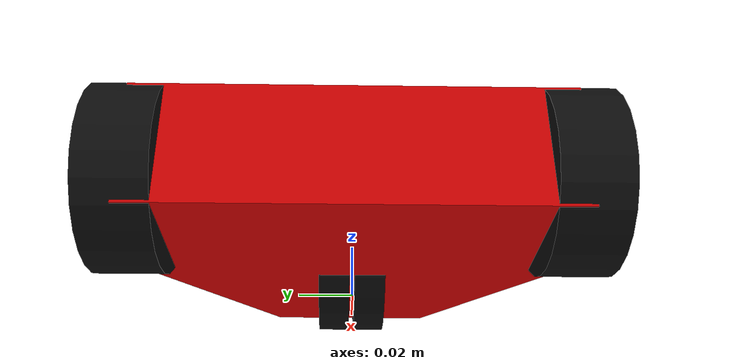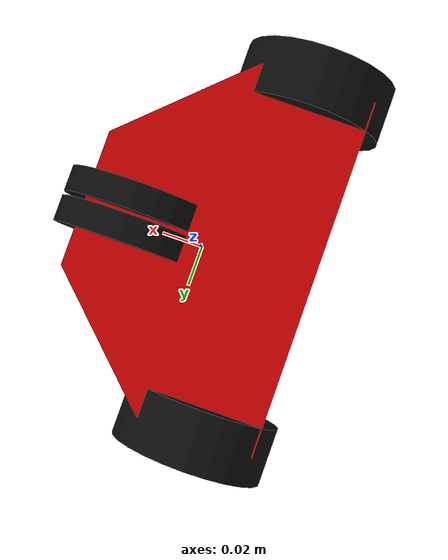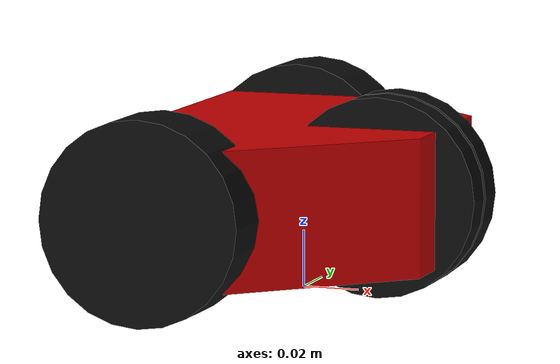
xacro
<?xml version="1.0"?>
<robot xmlns:xacro="http://www.ros.org/wiki/xacro" name="robot">
  <!-- Dimensions are in metres. The chassis mass is a temporary placeholder. -->
  <xacro:property name="chassis_mass" value="1.0"/>
  <xacro:property name="wheel_radius" value="0.035"/>
  <xacro:property name="driven_wheel_width" value="0.026"/>
  <xacro:property name="omni_wheel_width" value="0.012"/>
  <xacro:property name="wheel_separation" value="0.161"/>
  <xacro:property name="wheel_x" value="-0.026"/>
  <xacro:property name="wheel_z" value="${wheel_radius}"/>
  <xacro:property name="omni_x" value="0.031"/>
  <xacro:property name="omni_y" value="0.007"/>
  <xacro:property name="chassis_bottom" value="0.011"/>
  <xacro:property name="chassis_height" value="0.048"/>

  <material name="red">
    <color rgba="0.8 0.0 0.0 1.0"/>
  </material>
  <material name="black">
    <color rgba="0.05 0.05 0.05 1.0"/>
  </material>

  <link name="base_link">
    <inertial>
      <origin xyz="0 0 0"/>
      <mass value="${chassis_mass}"/>
      <inertia ixx="0.01" ixy="0.0" ixz="0.0"
               iyy="0.01" iyz="0.0" izz="0.01"/>
    </inertial>
    <visual>
      <origin xyz="0 0 ${chassis_bottom}"/>
      <geometry>
        <mesh filename="package://gazebo/description/chassis.stl"
              scale="1 1 4.8"/>
      </geometry>
      <material name="red"/>
    </visual>
    <collision>
      <origin xyz="0 0 ${chassis_bottom}"/>
      <geometry>
        <mesh filename="package://gazebo/description/chassis.stl"
              scale="1 1 4.8"/>
      </geometry>
    </collision>
  </link>

  <xacro:macro name="driven_wheel" params="name y">
    <link name="${name}">
      <inertial>
        <mass value="0.2"/>
        <inertia ixx="0.0002" ixy="0.0" ixz="0.0"
                 iyy="0.0001" iyz="0.0" izz="0.0002"/>
      </inertial>
      <visual>
        <origin rpy="${pi / 2} 0 0"/>
        <geometry>
          <cylinder radius="${wheel_radius}" length="${driven_wheel_width}"/>
        </geometry>
        <material name="black"/>
      </visual>
      <collision>
        <origin rpy="${pi / 2} 0 0"/>
        <geometry>
          <cylinder radius="${wheel_radius}" length="${driven_wheel_width}"/>
        </geometry>
      </collision>
    </link>
    <joint name="${name}_joint" type="continuous">
      <parent link="base_link"/>
      <child link="${name}"/>
      <origin xyz="${wheel_x} ${y} ${wheel_z}"/>
      <axis xyz="0 1 0"/>
    </joint>
    <gazebo reference="${name}">
      <mu1>1.0</mu1>
      <mu2>1.0</mu2>
    </gazebo>
  </xacro:macro>

  <xacro:macro name="omni_wheel" params="name y">
    <link name="${name}">
      <inertial>
        <mass value="0.1"/>
        <inertia ixx="0.0001" ixy="0.0" ixz="0.0"
                 iyy="0.00005" iyz="0.0" izz="0.0001"/>
      </inertial>
      <visual>
        <origin rpy="${pi / 2} 0 0"/>
        <geometry>
          <cylinder radius="${wheel_radius}" length="${omni_wheel_width}"/>
        </geometry>
        <material name="black"/>
      </visual>
      <collision>
        <origin rpy="${pi / 2} 0 0"/>
        <geometry>
          <cylinder radius="${wheel_radius}" length="${omni_wheel_width}"/>
        </geometry>
      </collision>
    </link>
    <joint name="${name}_joint" type="continuous">
      <parent link="base_link"/>
      <child link="${name}"/>
      <origin xyz="${omni_x} ${y} ${wheel_z}"/>
      <axis xyz="0 1 0"/>
    </joint>
    <gazebo reference="${name}">
      <mu1>0.01</mu1>
      <mu2>0.01</mu2>
    </gazebo>
  </xacro:macro>

  <xacro:driven_wheel name="left_wheel" y="${wheel_separation / 2}"/>
  <xacro:driven_wheel name="right_wheel" y="${-wheel_separation / 2}"/>
  <xacro:omni_wheel name="front_omni_left" y="${omni_y}"/>
  <xacro:omni_wheel name="front_omni_right" y="${-omni_y}"/>

  <gazebo>
    <plugin
      filename="libignition-gazebo-diff-drive-system.so"
      name="ignition::gazebo::systems::DiffDrive">
      <left_joint>left_wheel_joint</left_joint>
      <right_joint>right_wheel_joint</right_joint>
      <wheel_separation>${wheel_separation}</wheel_separation>
      <wheel_radius>${wheel_radius}</wheel_radius>
      <odom_publish_frequency>50</odom_publish_frequency>
      <topic>/cmd_vel</topic>
      <odom_topic>/odom</odom_topic>
      <tf_topic>/tf</tf_topic>
      <frame_id>odom</frame_id>
      <child_frame_id>base_link</child_frame_id>
    </plugin>
    <plugin
      filename="libignition-gazebo-joint-state-publisher-system.so"
      name="ignition::gazebo::systems::JointStatePublisher">
      <topic>/model/robot/joint_state</topic>
    </plugin>
  </gazebo>
</robot>
